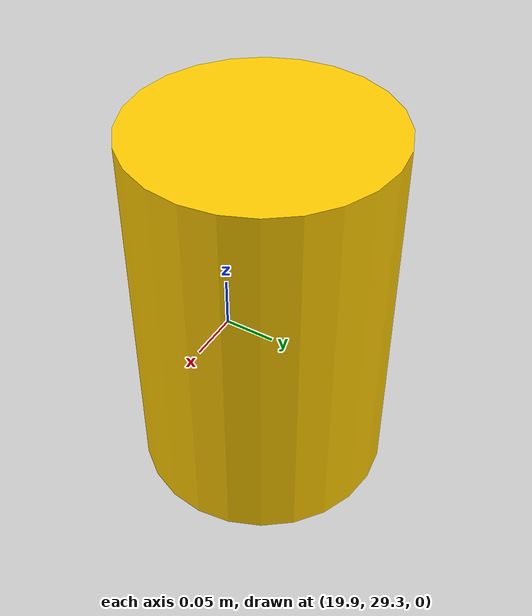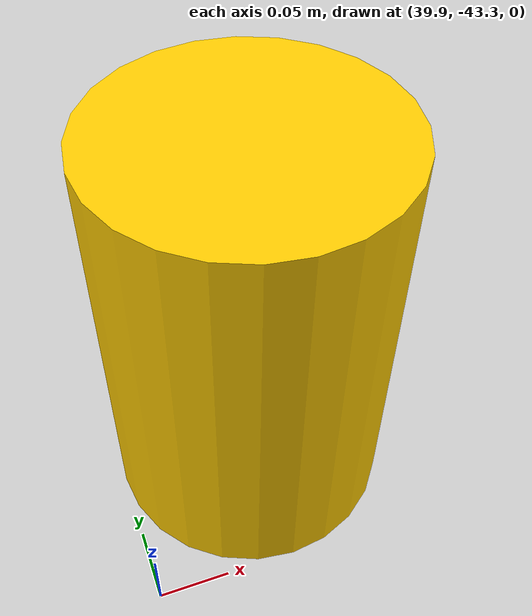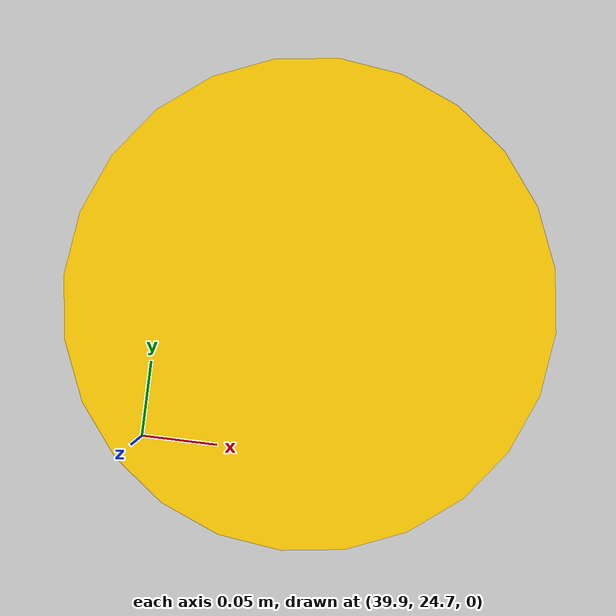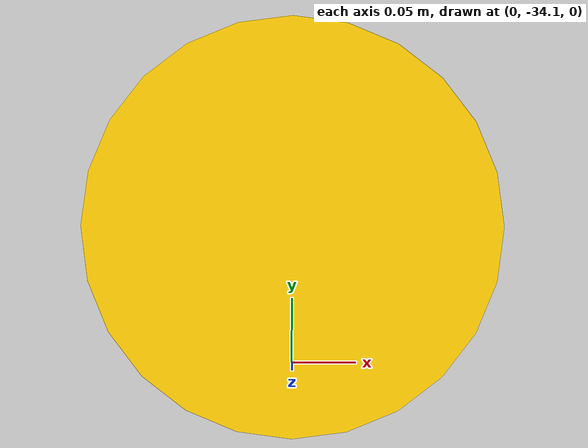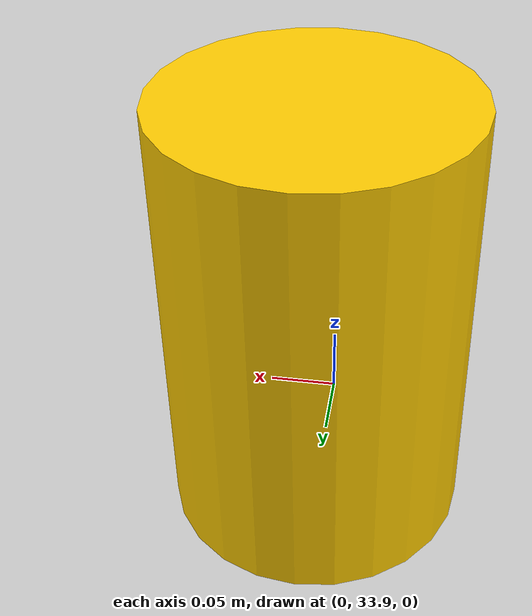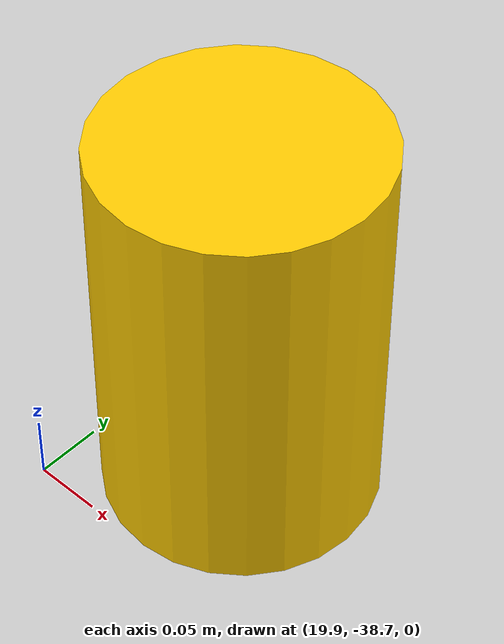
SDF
<?xml version="1.0" ?>
<sdf version="1.8">
  <world name="airport_runway_world">
    <physics name="1ms" type="ignored">
      <max_step_size>0.001</max_step_size>
      <real_time_factor>1.0</real_time_factor>
    </physics>

    <plugin filename="gz-sim-physics-system" name="gz::sim::systems::Physics"/>
    <plugin filename="gz-sim-user-commands-system" name="gz::sim::systems::UserCommands"/>
    <plugin filename="gz-sim-scene-broadcaster-system" name="gz::sim::systems::SceneBroadcaster"/>
    <plugin filename="gz-sim-sensors-system" name="gz::sim::systems::Sensors">
      <render_engine>ogre2</render_engine>
    </plugin>
    <plugin filename="gz-sim-imu-system" name="gz::sim::systems::Imu"/>
    <plugin filename="gz-sim-navsat-system" name="gz::sim::systems::NavSat"/>

    <spherical_coordinates>
      <surface_model>EARTH_WGS84</surface_model>
      <world_frame_orientation>ENU</world_frame_orientation>
      <latitude_deg>56.3000</latitude_deg>
      <longitude_deg>10.6190</longitude_deg>
      <elevation>25.0</elevation>
      <heading_deg>0</heading_deg>
    </spherical_coordinates>

    <scene>
      <ambient>0.6 0.6 0.6 1.0</ambient>
      <background>0.7 0.8 0.9 1.0</background>
      <shadows>true</shadows>
    </scene>

    <light type="directional" name="sun">
      <cast_shadows>true</cast_shadows>
      <pose>0 0 100 0 0 0</pose>
      <diffuse>0.9 0.9 0.9 1</diffuse>
      <specular>0.3 0.3 0.3 1</specular>
      <direction>-0.5 0.1 -0.9</direction>
    </light>

    <!-- Airport Ground Plane shifted by +160m so the runway centerline is at Gazebo origin (0,0) -->
    <include>
      <uri>model://airport_ground_plane</uri>
      <pose>0 160.0 0 0 0 0</pose>
    </include>

    <!-- Inspection FOD Targets on Runway -->
    <model name="fod_box_1">
      <pose>8.0 -1.8 0.05 0 0 0</pose>
      <link name="link">
        <collision name="collision">
          <geometry>
            <box><size>0.15 0.15 0.15</size></box>
          </geometry>
        </collision>
        <visual name="visual">
          <geometry>
            <box><size>0.15 0.15 0.15</size></box>
          </geometry>
          <material>
            <ambient>1.0 0.0 0.0 1</ambient>
            <diffuse>1.0 0.0 0.0 1</diffuse>
          </material>
        </visual>
      </link>
    </model>

    <model name="fod_bolt_2">
      <pose>16.0 -3.7 0.05 0 0 0</pose>
      <link name="link">
        <collision name="collision">
          <geometry>
            <cylinder><radius>0.05</radius><length>0.12</length></cylinder>
          </geometry>
        </collision>
        <visual name="visual">
          <geometry>
            <cylinder><radius>0.05</radius><length>0.12</length></cylinder>
          </geometry>
          <material>
            <ambient>0.8 0.8 0.0 1</ambient>
            <diffuse>0.8 0.8 0.0 1</diffuse>
          </material>
        </visual>
      </link>
    </model>

    <!-- Grass / Runway Boundary Edge Zone Markers (North & South Edges) -->
    <!-- North Grass Boundary (Y ≈ +34) -->
    <model name="boundary_north_marker_1">
      <static>true</static>
      <pose>-20 38.6 0.15 0 0 0</pose>
      <link name="link">
        <visual name="visual">
          <geometry><cylinder><radius>0.1</radius><length>0.3</length></cylinder></geometry>
          <material><ambient>1 0.8 0 1</ambient><diffuse>1 0.8 0 1</diffuse></material>
        </visual>
      </link>
    </model>
    <model name="boundary_north_marker_2">
      <static>true</static>
      <pose>0 34.0 0.15 0 0 0</pose>
      <link name="link">
        <visual name="visual">
          <geometry><cylinder><radius>0.1</radius><length>0.3</length></cylinder></geometry>
          <material><ambient>1 0.8 0 1</ambient><diffuse>1 0.8 0 1</diffuse></material>
        </visual>
      </link>
    </model>
    <model name="boundary_north_marker_3">
      <static>true</static>
      <pose>20 29.4 0.15 0 0 0</pose>
      <link name="link">
        <visual name="visual">
          <geometry><cylinder><radius>0.1</radius><length>0.3</length></cylinder></geometry>
          <material><ambient>1 0.8 0 1</ambient><diffuse>1 0.8 0 1</diffuse></material>
        </visual>
      </link>
    </model>
    <model name="boundary_north_marker_4">
      <static>true</static>
      <pose>40 24.8 0.15 0 0 0</pose>
      <link name="link">
        <visual name="visual">
          <geometry><cylinder><radius>0.1</radius><length>0.3</length></cylinder></geometry>
          <material><ambient>1 0.8 0 1</ambient><diffuse>1 0.8 0 1</diffuse></material>
        </visual>
      </link>
    </model>

    <!-- South Grass Boundary (Y ≈ -34) -->
    <model name="boundary_south_marker_1">
      <static>true</static>
      <pose>-20 -29.4 0.15 0 0 0</pose>
      <link name="link">
        <visual name="visual">
          <geometry><cylinder><radius>0.1</radius><length>0.3</length></cylinder></geometry>
          <material><ambient>1 0.8 0 1</ambient><diffuse>1 0.8 0 1</diffuse></material>
        </visual>
      </link>
    </model>
    <model name="boundary_south_marker_2">
      <static>true</static>
      <pose>0 -34.0 0.15 0 0 0</pose>
      <link name="link">
        <visual name="visual">
          <geometry><cylinder><radius>0.1</radius><length>0.3</length></cylinder></geometry>
          <material><ambient>1 0.8 0 1</ambient><diffuse>1 0.8 0 1</diffuse></material>
        </visual>
      </link>
    </model>
    <model name="boundary_south_marker_3">
      <static>true</static>
      <pose>20 -38.6 0.15 0 0 0</pose>
      <link name="link">
        <visual name="visual">
          <geometry><cylinder><radius>0.1</radius><length>0.3</length></cylinder></geometry>
          <material><ambient>1 0.8 0 1</ambient><diffuse>1 0.8 0 1</diffuse></material>
        </visual>
      </link>
    </model>
    <model name="boundary_south_marker_4">
      <static>true</static>
      <pose>40 -43.2 0.15 0 0 0</pose>
      <link name="link">
        <visual name="visual">
          <geometry><cylinder><radius>0.1</radius><length>0.3</length></cylinder></geometry>
          <material><ambient>1 0.8 0 1</ambient><diffuse>1 0.8 0 1</diffuse></material>
        </visual>
      </link>
    </model>

  </world>
</sdf>

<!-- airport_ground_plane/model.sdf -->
<sdf version="1.8">
   <model name="airport_ground_plane">
      <static>true</static>
      <link name="link">
         <collision name="collision">
            <geometry>
               <plane>
                  <normal>0 0 1</normal>
                  <size>3700 2000</size>
               </plane>
            </geometry>
            <surface>
               <friction>
                  <ode>
                     <mu>1.0</mu>
                     <mu2>1.0</mu2>
                  </ode>
               </friction>
            </surface>
         </collision>
         <visual name="visual">
            <cast_shadows>false</cast_shadows>
            <geometry>
               <plane>
                  <normal>0 0 1</normal>
                  <size>3700 2000</size>
               </plane>
            </geometry>
            <material>
               <ambient>0.8 0.8 0.8 1.0</ambient>
               <diffuse>0.8 0.8 0.8 1.0</diffuse>
               <specular>0.1 0.1 0.1 1.0</specular>
               <pbr>
                  <metal>
                     <albedo_map>model://airport_ground_plane/materials/textures/airport.png</albedo_map>
                  </metal>
               </pbr>
               <script>
                  <uri>model://airport_ground_plane/materials/scripts</uri>
                  <uri>model://airport_ground_plane/materials/textures/</uri>
                  <name>AirportGroundPlane/Image</name>
               </script>
            </material>
         </visual>
      </link>
   </model>
</sdf>
